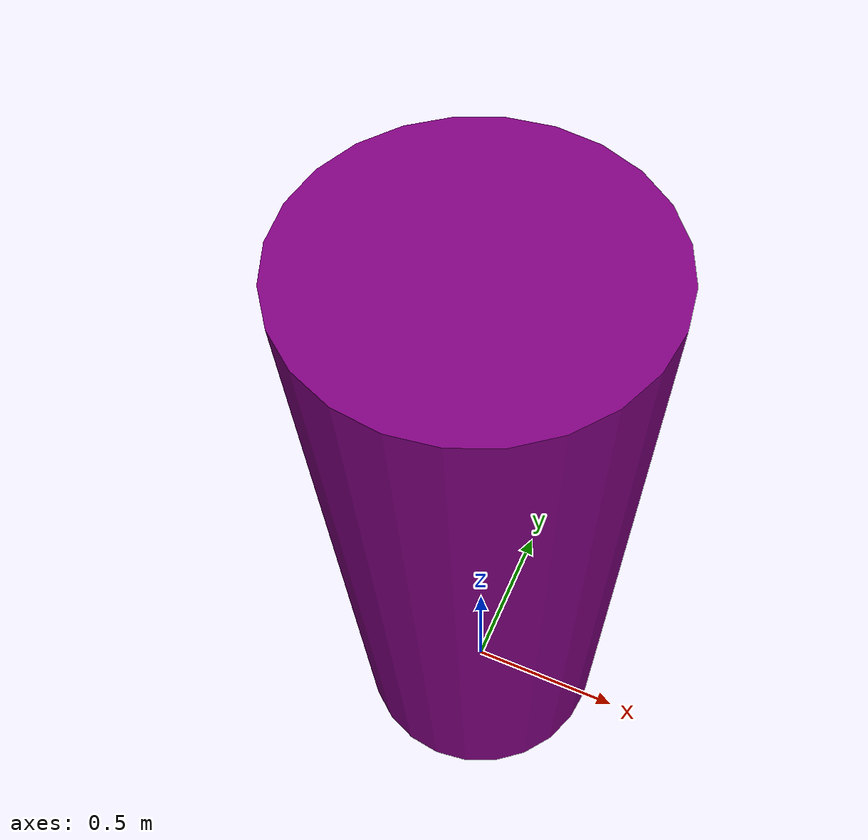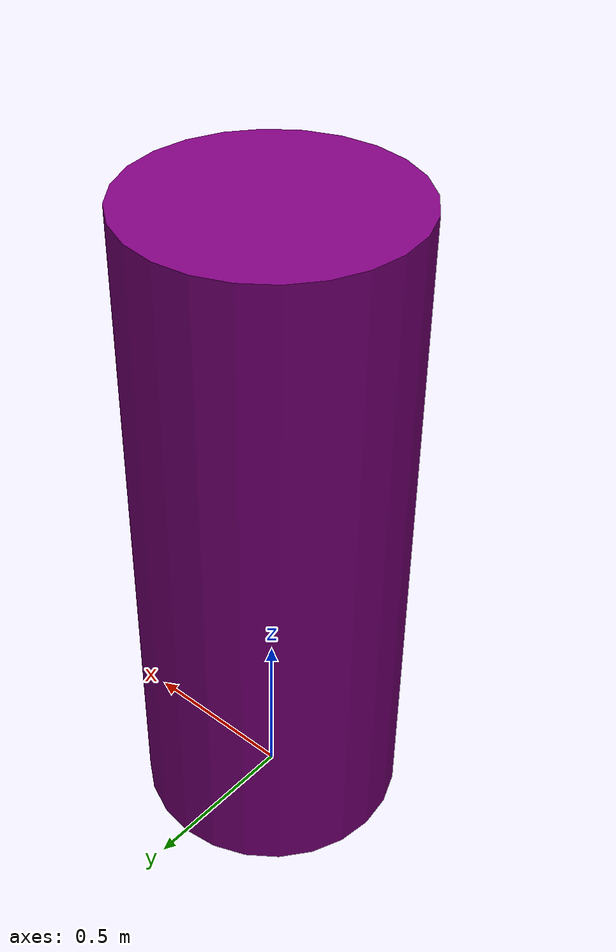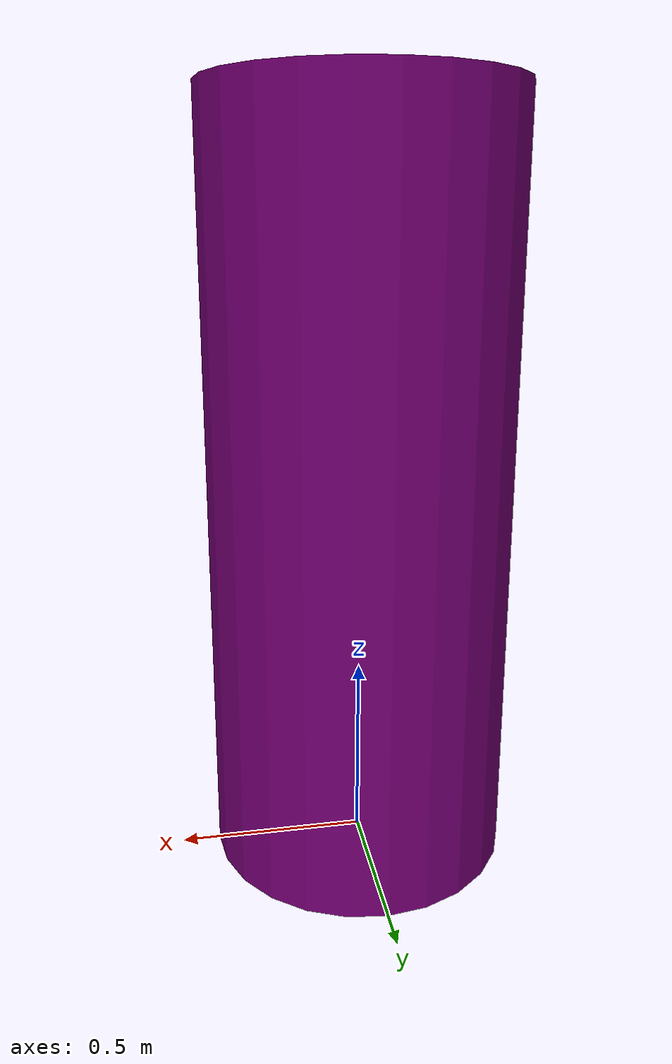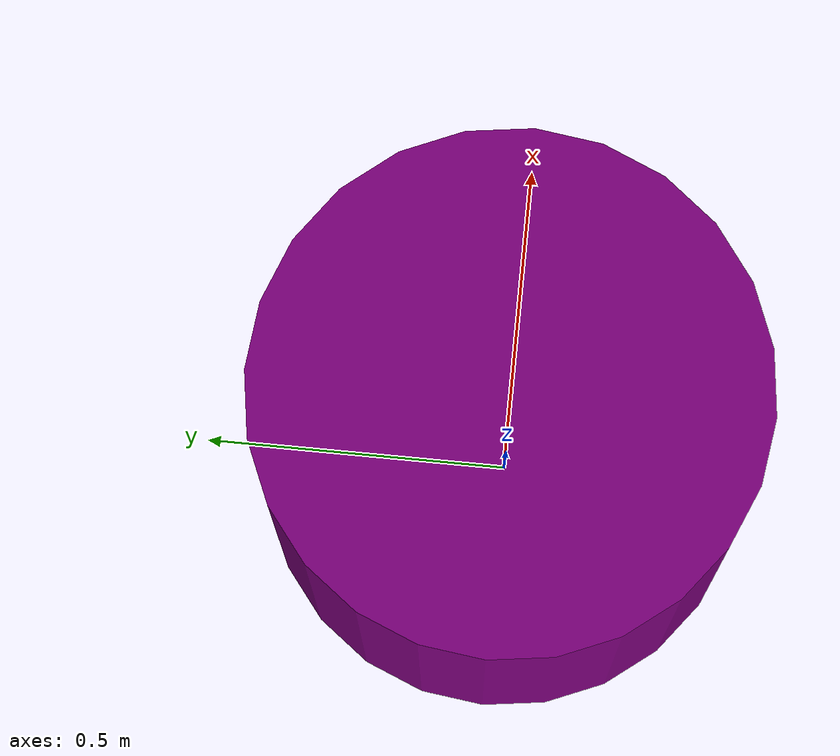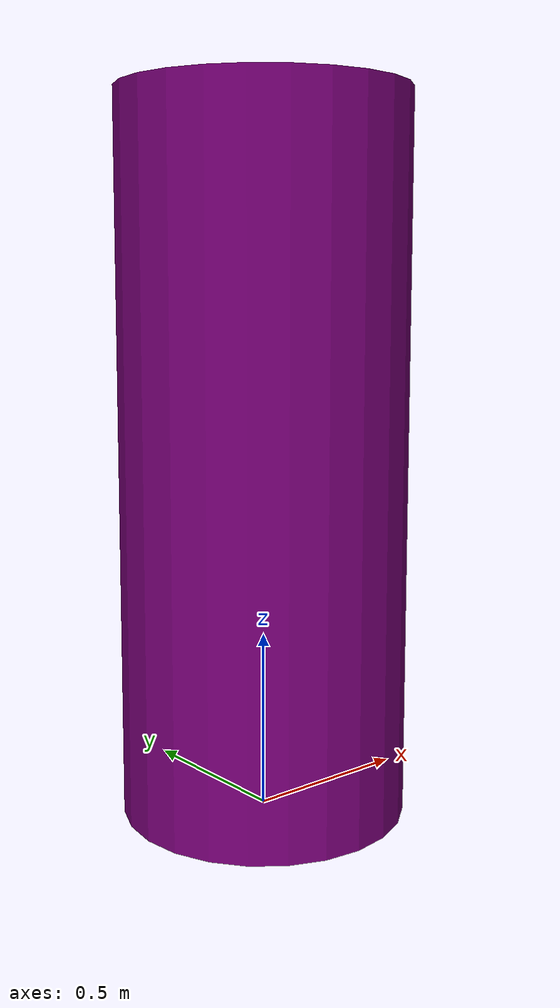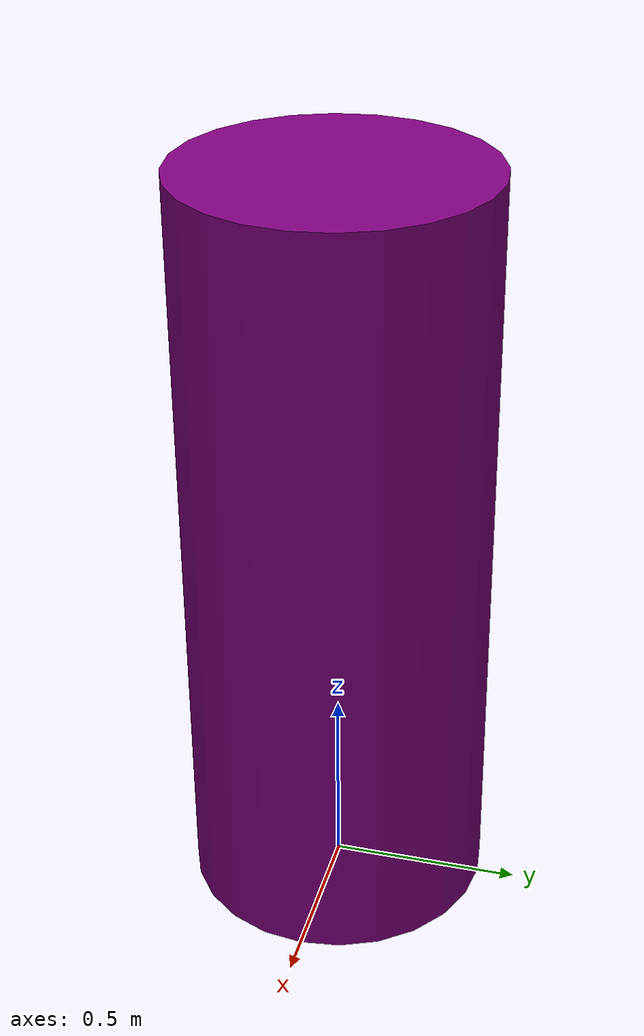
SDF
<?xml version="1.0"?>
<sdf version="1.9">
  <model name="tall_obstacle">
    <static>true</static>

    <link name="base_link">

      <!-- VISUAL: Cylinder -->
      <visual name="visual_cylinder">
        <pose>0 0 1.0 0 0 0</pose>
        <!-- z = 2.0 / 2 = 1.0 (height/2) -->

        <geometry>
          <cylinder>
            <radius>0.4</radius>
            <length>2.0</length>
          </cylinder>
        </geometry>

        <material>
          <ambient>0.5 0.0 0.5 1</ambient>  <!-- Purple -->
          <diffuse>0.5 0.0 0.5 1</diffuse>
          <specular>0.2 0.2 0.2 1</specular>
        </material>
      </visual>

      <!-- COLLISION: Match the visual -->
      <collision name="collision_cylinder">
        <pose>0 0 1.0 0 0 0</pose>

        <geometry>
          <cylinder>
            <radius>0.4</radius>
            <length>2.0</length>
          </cylinder>
        </geometry>
      </collision>

    </link>
  </model>
</sdf>
